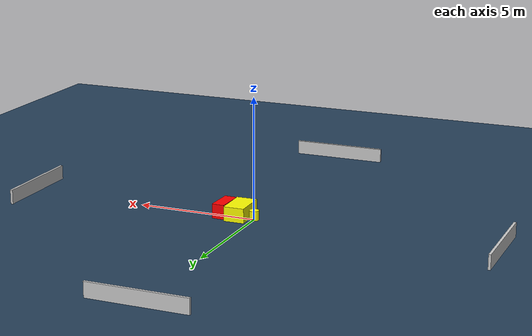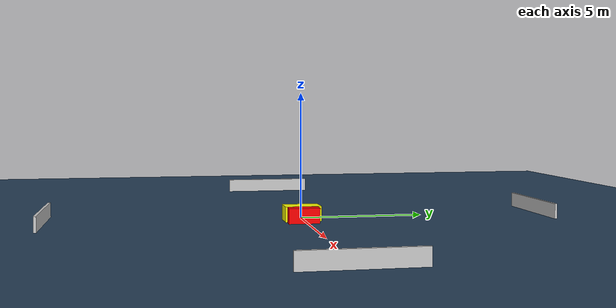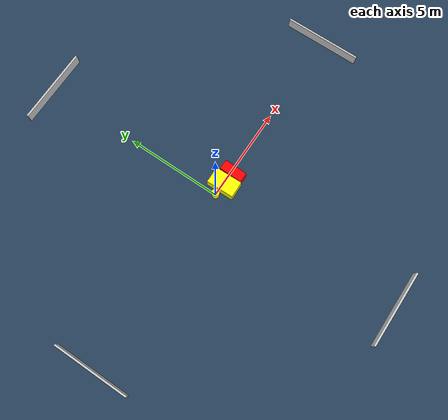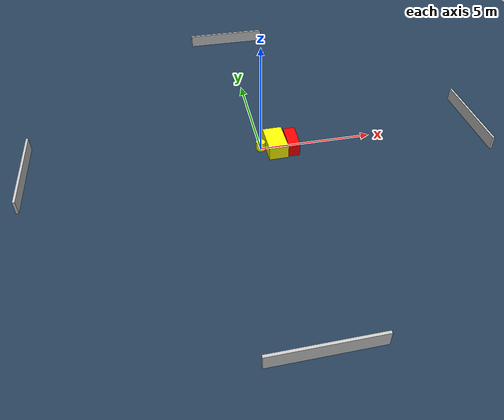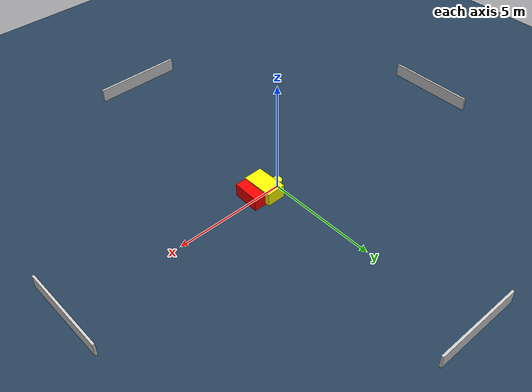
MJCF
<?xml version="1.0" ?>
<mujoco model="generated_environment">
  <option timestep="0.01" integrator="RK4" cone="elliptic"/>
  <default>
    <geom density="1"/>
  </default>
  <asset>
    <texture builtin="gradient" height="3072" name="skybox" rgb1="0.3 0.5 0.7" rgb2="0 0 0" type="skybox" width="512"/>
    <texture builtin="checker" height="300" name="groundplane" rgb1="0.2 0.3 0.4" rgb2="0.1 0.2 0.3" type="2d" width="300"/>
    <material name="groundplane" reflectance="0.2" texrepeat="5 5" texture="groundplane"/>
  </asset>
  <worldbody>
    <light dir="0 0 -1" directional="true" pos="0 0 1.5"/>
    <geom condim="3" friction="0.5 0.005 0.001" material="groundplane" name="floor" pos="0 0 0" size="0 0 0.05" type="plane"/>
    <body name="walls">
      <geom name="wall_1" condim="4" pos="-10.0 0.0 0.3" rgba="0.800000011920929 0.800000011920929 0.800000011920929 1.0" size="0.05 2.0 0.3" type="box"/>
      <geom name="wall_2" condim="4" pos="10.0 0.0 0.3" rgba="0.800000011920929 0.800000011920929 0.800000011920929 1.0" size="0.05 2.0 0.3" type="box"/>
      <geom name="wall_3" condim="4" pos="0.0 -10.0 0.3" rgba="0.800000011920929 0.800000011920929 0.800000011920929 1.0" size="2.0 0.05 0.3" type="box"/>
      <geom name="wall_4" condim="4" pos="0.0 10.0 0.3" rgba="0.800000011920929 0.800000011920929 0.800000011920929 1.0" size="2.0 0.05 0.3" type="box"/>
    </body>
    <body name="robot">
      <joint name="joint_x" type="slide" pos="0 0 0" axis="1 0 0"/>
      <joint name="joint_y" type="slide" pos="0 0 0" axis="0 1 0"/>
      <geom name="robot" type="cylinder" pos="0.0 0.0 0.2" size="0.2 0.2 0.0" mass="5.0" friction="1.0 0.005 0.0001" condim="4" rgba="1.0 1.0 0.0 1.0"/>
    </body>
    <body name="obstacle_1_movable">
      <geom name="obstacle_1_movable" condim="4" pos="0.6333420327602151 -0.0905363105776863 0.3" euler="0 0 181.05903027718614" friction="0.0 0.005 0.001" rgba="1.0 1.0 0.0 1.0" size="0.42508118754932966 0.7124192363205599 0.3" type="box" mass="0.1"/>
      <joint type="free"/>
    </body>
    <body name="obstacle_2_static">
      <geom name="obstacle_2_static" condim="4" pos="1.3487265222137679 -0.13408091455171814 0.3" euler="0 0 88.35344932800508" friction="0.0 0.005 0.001" rgba="1.0 0.0 0.0 1.0" size="0.6033103550064282 0.257535311053644 0.3" type="box"/>
    </body>
  </worldbody>
  <actuator>
    <motor name="actuator_x" joint="joint_x" gear="1" ctrlrange="-1 1"/>
    <motor name="actuator_y" joint="joint_y" gear="1" ctrlrange="-1 1"/>
  </actuator>
</mujoco>
